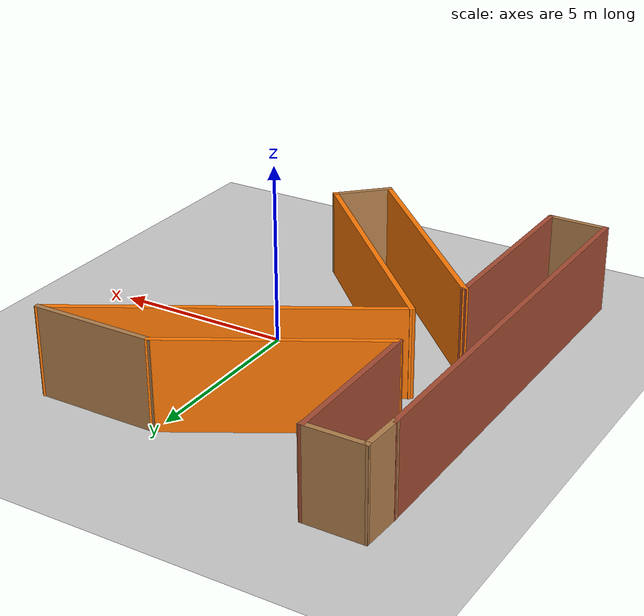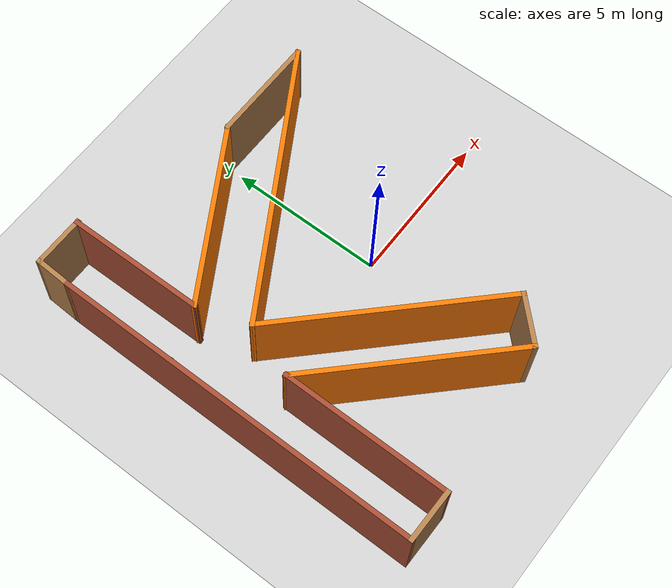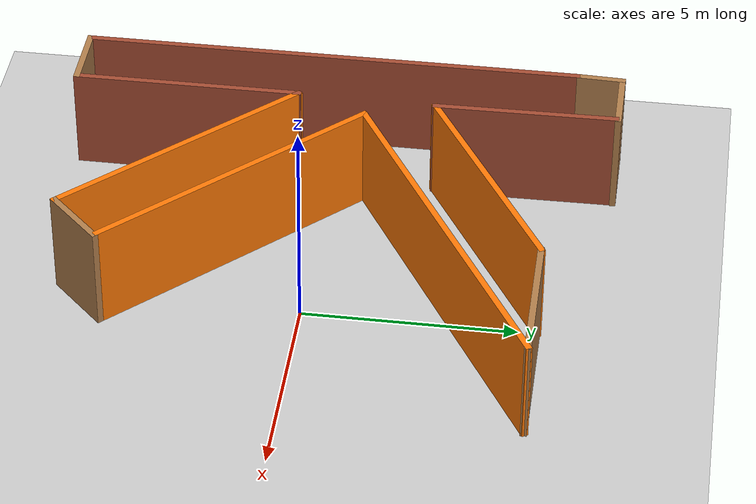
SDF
<sdf version="1.6">
 <world name="default">
  <plugin name="welcome_msg" filename="libwelcome_msg.so"/>
  <light name="sun" type="directional">
   <pose>0 0 10 0 -0 0</pose>
   <diffuse>0.8 0.8 0.8 1</diffuse>
   <specular>0.2 0.2 0.2 1</specular>
   <attenuation>
    <range>1000</range>
    <constant>0.9</constant>
    <linear>0.01</linear>
    <quadratic>0.001</quadratic>
   </attenuation>
   <direction>-0.5 0.1 -0.9</direction>
  </light>
  <model name="ground_plane">
   <static>1</static>
   <link name="link">
    <collision name="collision">
     <geometry><plane><normal>0 0 1</normal><size>100 100</size></plane></geometry>
     <surface>
      <contact><collide_bitmask>65535</collide_bitmask></contact>
      <friction><ode><mu>100</mu><mu2>50</mu2></ode></friction>
     </surface>
    </collision>
    <visual name="visual">
     <cast_shadows>0</cast_shadows>
     <geometry><plane><normal>0 0 1</normal><size>100 100</size></plane></geometry>
     <material>
      <script><uri>file://media/materials/scripts/gazebo.material</uri><name>Gazebo/Grey</name></script>
     </material>
    </visual>
   </link>
  </model>
  <gravity>0 0 -9.8</gravity>
  <magnetic_field>6e-06 2.3e-05 -4.2e-05</magnetic_field>
  <atmosphere type="adiabatic"/>
  <physics name="default_physics" default="0" type="ode">
   <max_step_size>0.001</max_step_size>
   <real_time_factor>1</real_time_factor>
   <real_time_update_rate>1000</real_time_update_rate>
  </physics>
  <scene><ambient>0.4 0.4 0.4 1</ambient><background>0.7 0.7 0.7 1</background><shadows>1</shadows></scene>
  <spherical_coordinates>
   <surface_model>EARTH_WGS84</surface_model>
   <latitude_deg>0</latitude_deg>
   <longitude_deg>0</longitude_deg>
   <elevation>0</elevation>
   <heading_deg>0</heading_deg>
  </spherical_coordinates>
  <model name="k_map">
   <pose>-1.64821 0.331699 0 0 -0 0</pose>
   <link name="Wall_0">
    <collision name="Wall_0_Collision">
     <geometry><box><size>12 0.15 2.5</size></box></geometry>
     <pose>0 0 1.25 0 -0 0</pose>
    </collision>
    <visual name="Wall_0_Visual">
     <pose>0 0 1.25 0 -0 0</pose>
     <geometry><box><size>12 0.15 2.5</size></box></geometry>
     <material>
      <script><uri>file://media/materials/scripts/gazebo.material</uri><name>Gazebo/Bricks</name></script>
      <ambient>1 1 1 1</ambient>
     </material>
     <meta><layer>0</layer></meta>
    </visual>
    <pose>-5.05323 -0.546651 0 0 0 -1.5708</pose>
   </link>
   <link name="Wall_1">
    <collision name="Wall_1_Collision">
     <geometry><box><size>1.75 0.15 2.5</size></box></geometry>
     <pose>0 0 1.25 0 -0 0</pose>
    </collision>
    <visual name="Wall_1_Visual">
     <pose>0 0 1.25 0 -0 0</pose>
     <geometry><box><size>1.75 0.15 2.5</size></box></geometry>
     <material>
      <script><uri>file://media/materials/scripts/gazebo.material</uri><name>Gazebo/Wood</name></script>
      <ambient>1 1 1 1</ambient>
     </material>
     <meta><layer>0</layer></meta>
    </visual>
    <pose>-4.25323 -6.47165 0 0 -0 0</pose>
   </link>
   <link name="Wall_10">
    <collision name="Wall_10_Collision">
     <geometry><box><size>1.75 0.15 2.5</size></box></geometry>
     <pose>0 0 1.25 0 -0 0</pose>
    </collision>
    <visual name="Wall_10_Visual">
     <pose>0 0 1.25 0 -0 0</pose>
     <geometry><box><size>1.75 0.15 2.5</size></box></geometry>
     <material>
      <script><uri>file://media/materials/scripts/gazebo.material</uri><name>Gazebo/Wood</name></script>
      <ambient>1 1 1 1</ambient>
     </material>
     <meta><layer>0</layer></meta>
    </visual>
    <pose>-4.21074 6.46879 0 0 -0 3.14159</pose>
   </link>
   <link name="Wall_14">
    <collision name="Wall_14_Collision">
     <geometry><box><size>1.24127 0.15 2.5</size></box></geometry>
     <pose>0 0 1.25 0 -0 0</pose>
    </collision>
    <visual name="Wall_14_Visual">
     <pose>0 0 1.25 0 -0 0</pose>
     <geometry><box><size>1.24127 0.15 2.5</size></box></geometry>
     <material>
      <script><uri>file://media/materials/scripts/gazebo.material</uri><name>Gazebo/Wood</name></script>
      <ambient>1 1 1 1</ambient>
     </material>
     <meta><layer>0</layer></meta>
    </visual>
    <pose>-5.03198 5.92357 0 0 -0 1.53185</pose>
   </link>
   <link name="Wall_2">
    <collision name="Wall_2_Collision">
     <geometry><box><size>5.5 0.15 2.5</size></box></geometry>
     <pose>0 0 1.25 0 -0 0</pose>
    </collision>
    <visual name="Wall_2_Visual">
     <pose>0 0 1.25 0 -0 0</pose>
     <geometry><box><size>5.5 0.15 2.5</size></box></geometry>
     <material>
      <script><uri>file://media/materials/scripts/gazebo.material</uri><name>Gazebo/Bricks</name></script>
      <ambient>1 1 1 1</ambient>
     </material>
     <meta><layer>0</layer></meta>
    </visual>
    <pose>-3.45323 -3.79665 0 0 -0 1.5708</pose>
   </link>
   <link name="Wall_3">
    <collision name="Wall_3_Collision">
     <geometry><box><size>7 0.15 2.5</size></box></geometry>
     <pose>0 0 1.25 0 -0 0</pose>
    </collision>
    <visual name="Wall_3_Visual">
     <pose>0 0 1.25 0 -0 0</pose>
     <geometry><box><size>7 0.15 2.5</size></box></geometry>
     <material>
      <script><uri>file://media/materials/scripts/gazebo.material</uri><name>Gazebo/Grey</name></script>
      <ambient>0.996078 0.47451 0.0196078 1</ambient>
     </material>
     <meta><layer>0</layer></meta>
    </visual>
    <pose>-1.03139 -3.54349 0 0 0 -0.785398</pose>
   </link>
   <link name="Wall_4">
    <collision name="Wall_4_Collision">
     <geometry><box><size>1.75 0.15 2.5</size></box></geometry>
     <pose>0 0 1.25 0 -0 0</pose>
    </collision>
    <visual name="Wall_4_Visual">
     <pose>0 0 1.25 0 -0 0</pose>
     <geometry><box><size>1.75 0.15 2.5</size></box></geometry>
     <material>
      <script><uri>file://media/materials/scripts/gazebo.material</uri><name>Gazebo/Wood</name></script>
      <ambient>1 1 1 1</ambient>
     </material>
     <meta><layer>0</layer></meta>
    </visual>
    <pose>1.95614 -5.39965 0 0 -0 0.785398</pose>
   </link>
   <link name="Wall_5">
    <collision name="Wall_5_Collision">
     <geometry><box><size>7.75 0.15 2.5</size></box></geometry>
     <pose>0 0 1.25 0 -0 0</pose>
    </collision>
    <visual name="Wall_5_Visual">
     <pose>0 0 1.25 0 -0 0</pose>
     <geometry><box><size>7.75 0.15 2.5</size></box></geometry>
     <material>
      <script><uri>file://media/materials/scripts/gazebo.material</uri><name>Gazebo/Grey</name></script>
      <ambient>0.996078 0.47451 0.0196078 1</ambient>
     </material>
     <meta><layer>0</layer></meta>
    </visual>
    <pose>-0.165184 -2.14696 0 0 -0 2.35619</pose>
   </link>
   <link name="Wall_6">
    <collision name="Wall_6_Collision">
     <geometry><box><size>9.25 0.15 2.5</size></box></geometry>
     <pose>0 0 1.25 0 -0 0</pose>
    </collision>
    <visual name="Wall_6_Visual">
     <pose>0 0 1.25 0 -0 0</pose>
     <geometry><box><size>9.25 0.15 2.5</size></box></geometry>
     <material>
      <script><uri>file://media/materials/scripts/gazebo.material</uri><name>Gazebo/Grey</name></script>
      <ambient>0.996078 0.47451 0.0196078 1</ambient>
     </material>
     <meta><layer>0</layer></meta>
    </visual>
    <pose>1.08823 2.81505 0 0 -0 0.523599</pose>
   </link>
   <link name="Wall_7">
    <collision name="Wall_7_Collision">
     <geometry><box><size>3.5 0.15 2.5</size></box></geometry>
     <pose>0 0 1.25 0 -0 0</pose>
    </collision>
    <visual name="Wall_7_Visual">
     <pose>0 0 1.25 0 -0 0</pose>
     <geometry><box><size>3.5 0.15 2.5</size></box></geometry>
     <material>
      <script><uri>file://media/materials/scripts/gazebo.material</uri><name>Gazebo/Wood</name></script>
      <ambient>1 1 1 1</ambient>
     </material>
     <meta><layer>0</layer></meta>
    </visual>
    <pose>3.35364 5.09005 0 0 -0 3.14159</pose>
   </link>
   <link name="Wall_8">
    <collision name="Wall_8_Collision">
     <geometry><box><size>6 0.15 2.5</size></box></geometry>
     <pose>0 0 1.25 0 -0 0</pose>
    </collision>
    <visual name="Wall_8_Visual">
     <pose>0 0 1.25 0 -0 0</pose>
     <geometry><box><size>6 0.15 2.5</size></box></geometry>
     <material>
      <script><uri>file://media/materials/scripts/gazebo.material</uri><name>Gazebo/Grey</name></script>
      <ambient>0.996078 0.47451 0.0196078 1</ambient>
     </material>
     <meta><layer>0</layer></meta>
    </visual>
    <pose>-0.854482 3.62755 0 0 0 -2.61799</pose>
   </link>
   <link name="Wall_9">
    <collision name="Wall_9_Collision">
     <geometry><box><size>4.45399 0.15 2.5</size></box></geometry>
     <pose>0 0 1.25 0 -0 0</pose>
    </collision>
    <visual name="Wall_9_Visual">
     <pose>0 0 1.25 0 -0 0</pose>
     <geometry><box><size>4.45399 0.15 2.5</size></box></geometry>
     <material>
      <script><uri>file://media/materials/scripts/gazebo.material</uri><name>Gazebo/Bricks</name></script>
      <ambient>1 1 1 1</ambient>
     </material>
     <meta><layer>0</layer></meta>
    </visual>
    <pose>-3.41074 4.31692 0 0 -0 1.58154</pose>
   </link>
   <static>1</static>
  </model>
  <model name="my_ball">
   <link name="link_0">
    <inertial>
     <mass>1</mass>
     <inertia><ixx>0.1</ixx><ixy>0</ixy><ixz>0</ixz><iyy>0.1</iyy><iyz>0</iyz><izz>0.1</izz></inertia>
    </inertial>
    <visual name="visual">
     <geometry><sphere><radius>0.1</radius></sphere></geometry>
     <material>
      <lighting>1</lighting>
      <script><uri>file://media/materials/scripts/gazebo.material</uri><name>Gazebo/Grey</name></script>
      <shader type="pixel"><normal_map>__default__</normal_map></shader>
      <ambient>1 1 1 1</ambient>
      <diffuse>1 1 1 1</diffuse>
      <specular>1 1 1 1</specular>
      <emissive>1 1 1 1</emissive>
     </material>
    </visual>
    <collision name="collision">
     <geometry><sphere><radius>0.1</radius></sphere></geometry>
     <surface>
      <friction>
       <ode><mu>1</mu><mu2>1</mu2><fdir1>0 0 0</fdir1><slip1>0</slip1><slip2>0</slip2></ode>
       <torsional>
        <coefficient>1</coefficient>
        <patch_radius>0</patch_radius>
        <surface_radius>0</surface_radius>
        <use_patch_radius>1</use_patch_radius>
        <ode><slip>0</slip></ode>
       </torsional>
      </friction>
      <bounce><restitution_coefficient>0</restitution_coefficient><threshold>1e+06</threshold></bounce>
      <contact>
       <collide_without_contact>0</collide_without_contact>
       <collide_without_contact_bitmask>1</collide_without_contact_bitmask>
       <collide_bitmask>1</collide_bitmask>
       <ode>
        <soft_cfm>0</soft_cfm>
        <soft_erp>0.2</soft_erp>
        <kp>1e+13</kp>
        <kd>1</kd>
        <max_vel>0.01</max_vel>
        <min_depth>0</min_depth>
       </ode>
       <bullet>
        <split_impulse>1</split_impulse>
        <split_impulse_penetration_threshold>-0.01</split_impulse_penetration_threshold>
        <soft_cfm>0</soft_cfm>
        <soft_erp>0.2</soft_erp>
        <kp>1e+13</kp>
        <kd>1</kd>
       </bullet>
      </contact>
     </surface>
    </collision>
   </link>
   <static>0</static>
   <pose>-6.06855 2.73345 0.1 0 -0 0</pose>
  </model>
  <plugin filename="libcollision_map_creator.so" name="collision_map_creator"/>
 </world>
</sdf>
